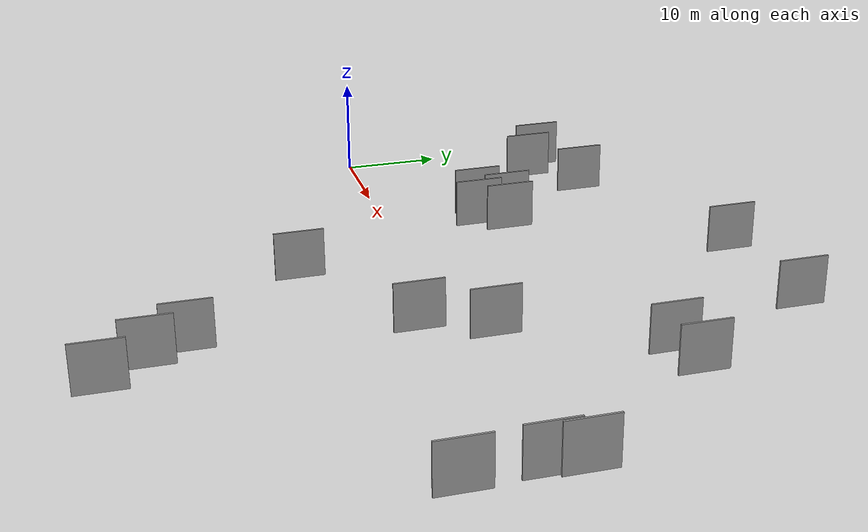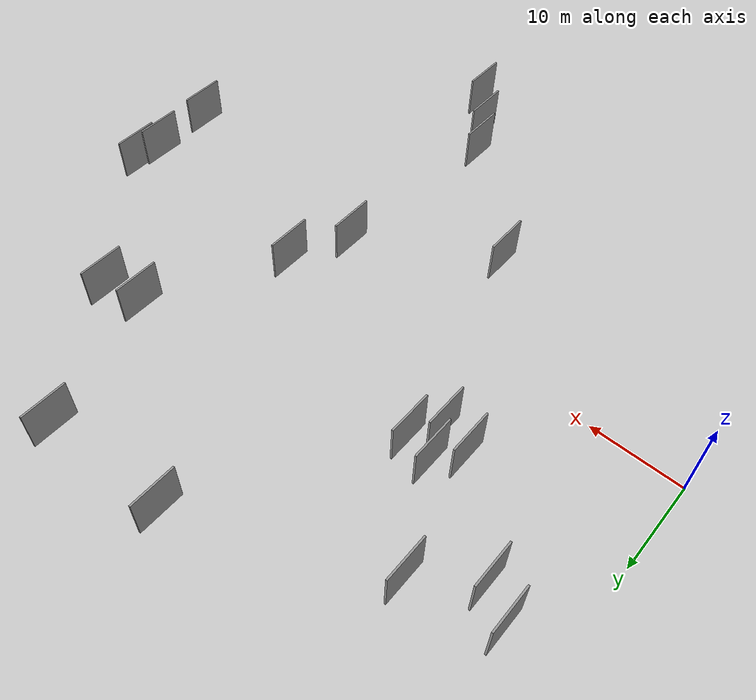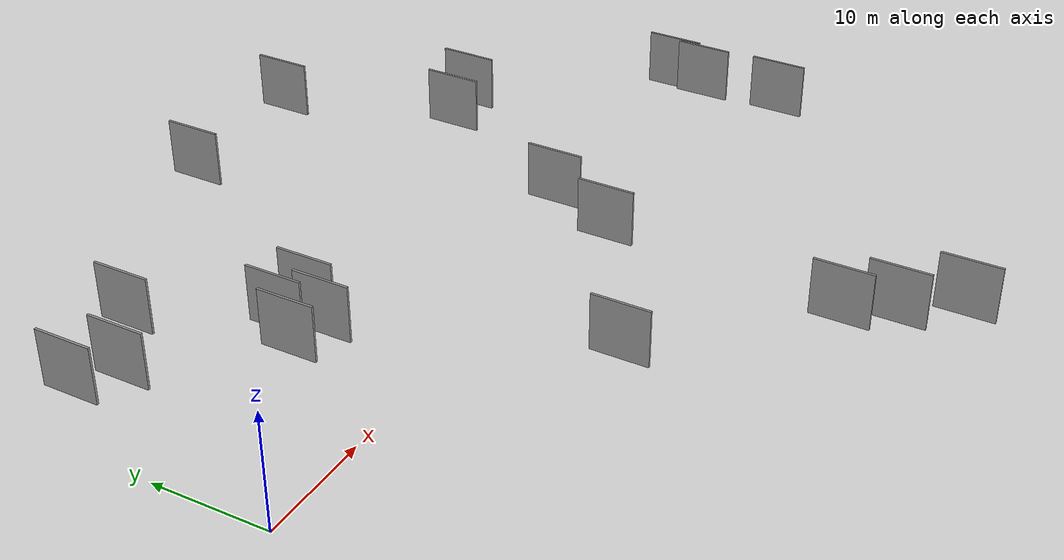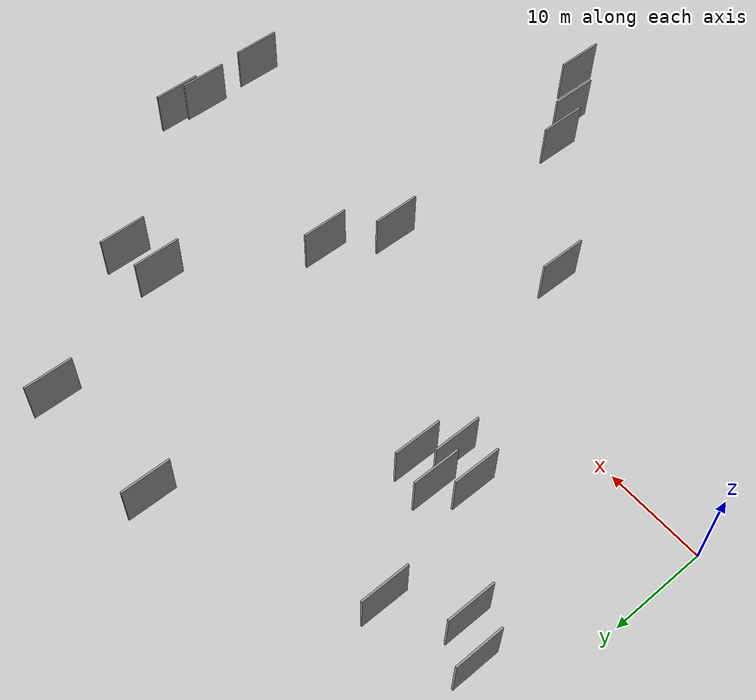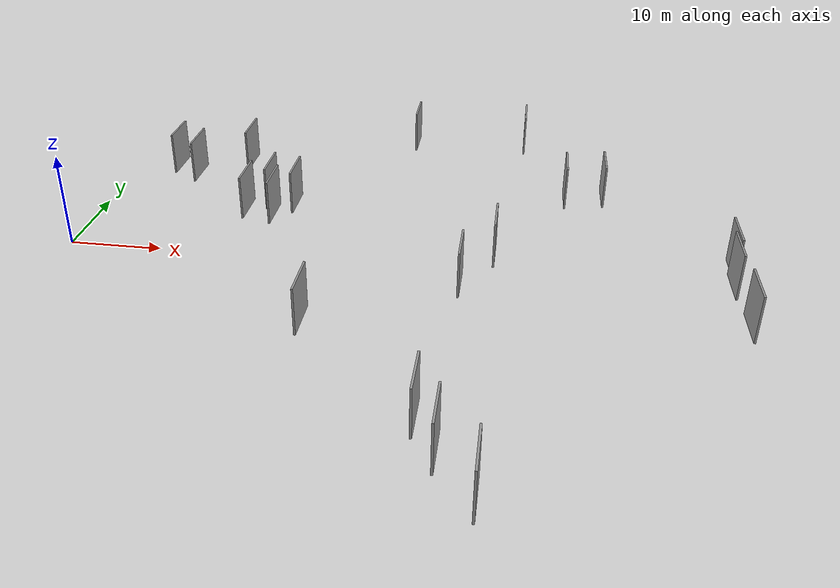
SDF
<sdf version="1.6">
 <world name="default">
  <scene>
   <sky><clouds><speed>12</speed></clouds></sky>
   <ambient>0.4 0.4 0.4 1</ambient>
   <background>0.7 0.7 0.7 1</background>
   <shadows>1</shadows>
  </scene>
  <gravity>0 0 -9.8066</gravity>
  <magnetic_field>6e-06 2.3e-05 -4.2e-05</magnetic_field>
  <physics default="0" name="default_physics" type="ode">
   <ode>
    <solver>
     <type>quick</type>
     <iters>10</iters>
     <sor>1.0</sor>
     <use_dynamic_moi_rescaling>0</use_dynamic_moi_rescaling>
    </solver>
    <constraints>
     <cfm>0</cfm>
     <erp>0.2</erp>
     <contact_max_correcting_vel>100</contact_max_correcting_vel>
     <contact_surface_layer>0.001</contact_surface_layer>
    </constraints>
   </ode>
   <max_step_size>0.004</max_step_size>
   <real_time_factor>1</real_time_factor>
   <real_time_update_rate>250</real_time_update_rate>
  </physics>
  <light name="sun" type="directional">
   <pose>0 0 10 0 0 0</pose>
   <diffuse>0.8 0.8 0.8 1</diffuse>
   <specular>0.2 0.2 0.2 1</specular>
   <attenuation>
    <range>1000</range>
    <constant>0.9</constant>
    <linear>0.01</linear>
    <quadratic>0.001</quadratic>
   </attenuation>
   <direction>-0.5 0.1 -0.9</direction>
  </light>
  <model name="grey_wall_1">
   <static>1</static>
   <pose>42.5222 -2.7553 0.0 0.000000 0.000000 1.570796</pose>
   <link name="link">
    <pose>0 0 2.50 0 0 0</pose>
    <collision name="collision"><geometry><box><size>5.00 0.2 5.00</size></box></geometry></collision>
    <visual name="visual">
     <cast_shadows>0</cast_shadows>
     <geometry><box><size>5.00 0.2 5.00</size></box></geometry>
     <material>
      <script>
       <uri>model://grey_wall/materials/scripts</uri>
       <uri>model://grey_wall/materials/textures</uri>
       <name>vrc/grey_wall</name>
      </script>
     </material>
    </visual>
   </link>
  </model>
  <model name="grey_wall_2">
   <static>1</static>
   <pose>33.9787 32.7469 0.0 0.000000 0.000000 1.570796</pose>
   <link name="link">
    <pose>0 0 2.50 0 0 0</pose>
    <collision name="collision"><geometry><box><size>5.00 0.2 5.00</size></box></geometry></collision>
    <visual name="visual">
     <cast_shadows>0</cast_shadows>
     <geometry><box><size>5.00 0.2 5.00</size></box></geometry>
     <material>
      <script>
       <uri>model://grey_wall/materials/scripts</uri>
       <uri>model://grey_wall/materials/textures</uri>
       <name>vrc/grey_wall</name>
      </script>
     </material>
    </visual>
   </link>
  </model>
  <model name="grey_wall_3">
   <static>1</static>
   <pose>13.6824 23.5184 0.0 0.000000 0.000000 1.570796</pose>
   <link name="link">
    <pose>0 0 2.50 0 0 0</pose>
    <collision name="collision"><geometry><box><size>5.00 0.2 5.00</size></box></geometry></collision>
    <visual name="visual">
     <cast_shadows>0</cast_shadows>
     <geometry><box><size>5.00 0.2 5.00</size></box></geometry>
     <material>
      <script>
       <uri>model://grey_wall/materials/scripts</uri>
       <uri>model://grey_wall/materials/textures</uri>
       <name>vrc/grey_wall</name>
      </script>
     </material>
    </visual>
   </link>
  </model>
  <model name="grey_wall_4">
   <static>1</static>
   <pose>48.0730 33.5196 0.0 0.000000 0.000000 1.570796</pose>
   <link name="link">
    <pose>0 0 2.50 0 0 0</pose>
    <collision name="collision"><geometry><box><size>5.00 0.2 5.00</size></box></geometry></collision>
    <visual name="visual">
     <cast_shadows>0</cast_shadows>
     <geometry><box><size>5.00 0.2 5.00</size></box></geometry>
     <material>
      <script>
       <uri>model://grey_wall/materials/scripts</uri>
       <uri>model://grey_wall/materials/textures</uri>
       <name>vrc/grey_wall</name>
      </script>
     </material>
    </visual>
   </link>
  </model>
  <model name="grey_wall_5">
   <static>1</static>
   <pose>40.6372 -23.8888 0.0 0.000000 0.000000 1.570796</pose>
   <link name="link">
    <pose>0 0 2.50 0 0 0</pose>
    <collision name="collision"><geometry><box><size>5.00 0.2 5.00</size></box></geometry></collision>
    <visual name="visual">
     <cast_shadows>0</cast_shadows>
     <geometry><box><size>5.00 0.2 5.00</size></box></geometry>
     <material>
      <script>
       <uri>model://grey_wall/materials/scripts</uri>
       <uri>model://grey_wall/materials/textures</uri>
       <name>vrc/grey_wall</name>
      </script>
     </material>
    </visual>
   </link>
  </model>
  <model name="grey_wall_6">
   <static>1</static>
   <pose>20.0922 9.7761 0.0 0.000000 0.000000 1.570796</pose>
   <link name="link">
    <pose>0 0 2.50 0 0 0</pose>
    <collision name="collision"><geometry><box><size>5.00 0.2 5.00</size></box></geometry></collision>
    <visual name="visual">
     <cast_shadows>0</cast_shadows>
     <geometry><box><size>5.00 0.2 5.00</size></box></geometry>
     <material>
      <script>
       <uri>model://grey_wall/materials/scripts</uri>
       <uri>model://grey_wall/materials/textures</uri>
       <name>vrc/grey_wall</name>
      </script>
     </material>
    </visual>
   </link>
  </model>
  <model name="grey_wall_7">
   <static>1</static>
   <pose>28.1929 -11.2838 0.0 0.000000 0.000000 1.570796</pose>
   <link name="link">
    <pose>0 0 2.50 0 0 0</pose>
    <collision name="collision"><geometry><box><size>5.00 0.2 5.00</size></box></geometry></collision>
    <visual name="visual">
     <cast_shadows>0</cast_shadows>
     <geometry><box><size>5.00 0.2 5.00</size></box></geometry>
     <material>
      <script>
       <uri>model://grey_wall/materials/scripts</uri>
       <uri>model://grey_wall/materials/textures</uri>
       <name>vrc/grey_wall</name>
      </script>
     </material>
    </visual>
   </link>
  </model>
  <model name="grey_wall_8">
   <static>1</static>
   <pose>4.9196 21.3900 0.0 0.000000 0.000000 1.570796</pose>
   <link name="link">
    <pose>0 0 2.50 0 0 0</pose>
    <collision name="collision"><geometry><box><size>5.00 0.2 5.00</size></box></geometry></collision>
    <visual name="visual">
     <cast_shadows>0</cast_shadows>
     <geometry><box><size>5.00 0.2 5.00</size></box></geometry>
     <material>
      <script>
       <uri>model://grey_wall/materials/scripts</uri>
       <uri>model://grey_wall/materials/textures</uri>
       <name>vrc/grey_wall</name>
      </script>
     </material>
    </visual>
   </link>
  </model>
  <model name="grey_wall_9">
   <static>1</static>
   <pose>18.9047 13.2730 0.0 0.000000 0.000000 1.570796</pose>
   <link name="link">
    <pose>0 0 2.50 0 0 0</pose>
    <collision name="collision"><geometry><box><size>5.00 0.2 5.00</size></box></geometry></collision>
    <visual name="visual">
     <cast_shadows>0</cast_shadows>
     <geometry><box><size>5.00 0.2 5.00</size></box></geometry>
     <material>
      <script>
       <uri>model://grey_wall/materials/scripts</uri>
       <uri>model://grey_wall/materials/textures</uri>
       <name>vrc/grey_wall</name>
      </script>
     </material>
    </visual>
   </link>
  </model>
  <model name="grey_wall_10">
   <static>1</static>
   <pose>53.1489 18.2751 0.0 0.000000 0.000000 1.570796</pose>
   <link name="link">
    <pose>0 0 2.50 0 0 0</pose>
    <collision name="collision"><geometry><box><size>5.00 0.2 5.00</size></box></geometry></collision>
    <visual name="visual">
     <cast_shadows>0</cast_shadows>
     <geometry><box><size>5.00 0.2 5.00</size></box></geometry>
     <material>
      <script>
       <uri>model://grey_wall/materials/scripts</uri>
       <uri>model://grey_wall/materials/textures</uri>
       <name>vrc/grey_wall</name>
      </script>
     </material>
    </visual>
   </link>
  </model>
  <model name="grey_wall_11">
   <static>1</static>
   <pose>57.5573 19.2066 0.0 0.000000 0.000000 1.570796</pose>
   <link name="link">
    <pose>0 0 2.50 0 0 0</pose>
    <collision name="collision"><geometry><box><size>5.00 0.2 5.00</size></box></geometry></collision>
    <visual name="visual">
     <cast_shadows>0</cast_shadows>
     <geometry><box><size>5.00 0.2 5.00</size></box></geometry>
     <material>
      <script>
       <uri>model://grey_wall/materials/scripts</uri>
       <uri>model://grey_wall/materials/textures</uri>
       <name>vrc/grey_wall</name>
      </script>
     </material>
    </visual>
   </link>
  </model>
  <model name="grey_wall_12">
   <static>1</static>
   <pose>46.1826 -32.0798 0.0 0.000000 0.000000 1.570796</pose>
   <link name="link">
    <pose>0 0 2.50 0 0 0</pose>
    <collision name="collision"><geometry><box><size>5.00 0.2 5.00</size></box></geometry></collision>
    <visual name="visual">
     <cast_shadows>0</cast_shadows>
     <geometry><box><size>5.00 0.2 5.00</size></box></geometry>
     <material>
      <script>
       <uri>model://grey_wall/materials/scripts</uri>
       <uri>model://grey_wall/materials/textures</uri>
       <name>vrc/grey_wall</name>
      </script>
     </material>
    </visual>
   </link>
  </model>
  <model name="grey_wall_13">
   <static>1</static>
   <pose>69.9597 -6.5523 0.0 0.000000 0.000000 1.570796</pose>
   <link name="link">
    <pose>0 0 2.50 0 0 0</pose>
    <collision name="collision"><geometry><box><size>5.00 0.2 5.00</size></box></geometry></collision>
    <visual name="visual">
     <cast_shadows>0</cast_shadows>
     <geometry><box><size>5.00 0.2 5.00</size></box></geometry>
     <material>
      <script>
       <uri>model://grey_wall/materials/scripts</uri>
       <uri>model://grey_wall/materials/textures</uri>
       <name>vrc/grey_wall</name>
      </script>
     </material>
    </visual>
   </link>
  </model>
  <model name="grey_wall_14">
   <static>1</static>
   <pose>8.0907 19.3002 0.0 0.000000 0.000000 1.570796</pose>
   <link name="link">
    <pose>0 0 2.50 0 0 0</pose>
    <collision name="collision"><geometry><box><size>5.00 0.2 5.00</size></box></geometry></collision>
    <visual name="visual">
     <cast_shadows>0</cast_shadows>
     <geometry><box><size>5.00 0.2 5.00</size></box></geometry>
     <material>
      <script>
       <uri>model://grey_wall/materials/scripts</uri>
       <uri>model://grey_wall/materials/textures</uri>
       <name>vrc/grey_wall</name>
      </script>
     </material>
    </visual>
   </link>
  </model>
  <model name="grey_wall_15">
   <static>1</static>
   <pose>69.9805 3.9175 0.0 0.000000 0.000000 1.570796</pose>
   <link name="link">
    <pose>0 0 2.50 0 0 0</pose>
    <collision name="collision"><geometry><box><size>5.00 0.2 5.00</size></box></geometry></collision>
    <visual name="visual">
     <cast_shadows>0</cast_shadows>
     <geometry><box><size>5.00 0.2 5.00</size></box></geometry>
     <material>
      <script>
       <uri>model://grey_wall/materials/scripts</uri>
       <uri>model://grey_wall/materials/textures</uri>
       <name>vrc/grey_wall</name>
      </script>
     </material>
    </visual>
   </link>
  </model>
  <model name="grey_wall_16">
   <static>1</static>
   <pose>42.7404 -27.6471 0.0 0.000000 0.000000 1.570796</pose>
   <link name="link">
    <pose>0 0 2.50 0 0 0</pose>
    <collision name="collision"><geometry><box><size>5.00 0.2 5.00</size></box></geometry></collision>
    <visual name="visual">
     <cast_shadows>0</cast_shadows>
     <geometry><box><size>5.00 0.2 5.00</size></box></geometry>
     <material>
      <script>
       <uri>model://grey_wall/materials/scripts</uri>
       <uri>model://grey_wall/materials/textures</uri>
       <name>vrc/grey_wall</name>
      </script>
     </material>
    </visual>
   </link>
  </model>
  <model name="grey_wall_17">
   <static>1</static>
   <pose>45.6556 3.6859 0.0 0.000000 0.000000 1.570796</pose>
   <link name="link">
    <pose>0 0 2.50 0 0 0</pose>
    <collision name="collision"><geometry><box><size>5.00 0.2 5.00</size></box></geometry></collision>
    <visual name="visual">
     <cast_shadows>0</cast_shadows>
     <geometry><box><size>5.00 0.2 5.00</size></box></geometry>
     <material>
      <script>
       <uri>model://grey_wall/materials/scripts</uri>
       <uri>model://grey_wall/materials/textures</uri>
       <name>vrc/grey_wall</name>
      </script>
     </material>
    </visual>
   </link>
  </model>
  <model name="grey_wall_18">
   <static>1</static>
   <pose>22.0558 12.6181 0.0 0.000000 0.000000 1.570796</pose>
   <link name="link">
    <pose>0 0 2.50 0 0 0</pose>
    <collision name="collision"><geometry><box><size>5.00 0.2 5.00</size></box></geometry></collision>
    <visual name="visual">
     <cast_shadows>0</cast_shadows>
     <geometry><box><size>5.00 0.2 5.00</size></box></geometry>
     <material>
      <script>
       <uri>model://grey_wall/materials/scripts</uri>
       <uri>model://grey_wall/materials/textures</uri>
       <name>vrc/grey_wall</name>
      </script>
     </material>
    </visual>
   </link>
  </model>
  <model name="grey_wall_19">
   <static>1</static>
   <pose>69.6133 0.7910 0.0 0.000000 0.000000 1.570796</pose>
   <link name="link">
    <pose>0 0 2.50 0 0 0</pose>
    <collision name="collision"><geometry><box><size>5.00 0.2 5.00</size></box></geometry></collision>
    <visual name="visual">
     <cast_shadows>0</cast_shadows>
     <geometry><box><size>5.00 0.2 5.00</size></box></geometry>
     <material>
      <script>
       <uri>model://grey_wall/materials/scripts</uri>
       <uri>model://grey_wall/materials/textures</uri>
       <name>vrc/grey_wall</name>
      </script>
     </material>
    </visual>
   </link>
  </model>
  <model name="grey_wall_20">
   <static>1</static>
   <pose>16.7510 10.5949 0.0 0.000000 0.000000 1.570796</pose>
   <link name="link">
    <pose>0 0 2.50 0 0 0</pose>
    <collision name="collision"><geometry><box><size>5.00 0.2 5.00</size></box></geometry></collision>
    <visual name="visual">
     <cast_shadows>0</cast_shadows>
     <geometry><box><size>5.00 0.2 5.00</size></box></geometry>
     <material>
      <script>
       <uri>model://grey_wall/materials/scripts</uri>
       <uri>model://grey_wall/materials/textures</uri>
       <name>vrc/grey_wall</name>
      </script>
     </material>
    </visual>
   </link>
  </model>
 </world>
</sdf>
